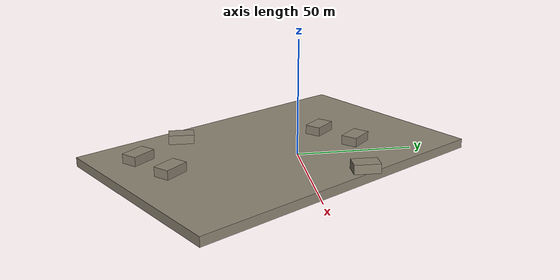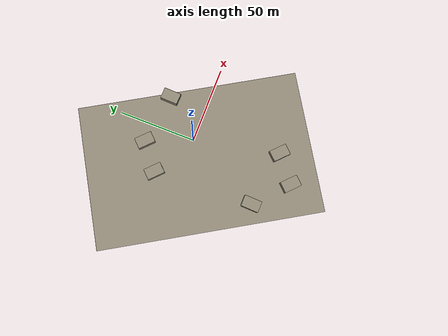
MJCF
<mujoco model="karuizawa">
  <compiler angle="degree" meshdir="." />
  <option gravity="0 0 -9.81" />

  <asset>
    <mesh name="cube" file="cube.obj" />
    <mesh name="cube_001" file="cube_001.obj" />
    <mesh name="cube_002" file="cube_002.obj" />
    <mesh name="cube_003" file="cube_003.obj" />
    <mesh name="cube_004" file="cube_004.obj" />
    <mesh name="cube_005" file="cube_005.obj" />
    <mesh name="cube_006" file="cube_006.obj" />
    <material name="terrain" rgba="0.55 0.52 0.45 1" />
  </asset>

  <worldbody>
    <light name="sun" directional="true" pos="10 -10 20" dir="-0.3 0.3 -1" diffuse="0.9 0.88 0.82" />
    <body name="karuizawa" pos="0 0 1.66" euler="90 0 0">
      <geom name="cube" type="mesh" mesh="cube" material="terrain" condim="3" friction="1 0.005 0.0001" />
      <geom name="cube_001" type="mesh" mesh="cube_001" material="terrain" condim="3" friction="1 0.005 0.0001" />
      <geom name="cube_002" type="mesh" mesh="cube_002" material="terrain" condim="3" friction="1 0.005 0.0001" />
      <geom name="cube_003" type="mesh" mesh="cube_003" material="terrain" condim="3" friction="1 0.005 0.0001" />
      <geom name="cube_004" type="mesh" mesh="cube_004" material="terrain" condim="3" friction="1 0.005 0.0001" />
      <geom name="cube_005" type="mesh" mesh="cube_005" material="terrain" condim="3" friction="1 0.005 0.0001" />
      <geom name="cube_006" type="mesh" mesh="cube_006" material="terrain" condim="3" friction="1 0.005 0.0001" />
    </body>
  </worldbody>
</mujoco>
